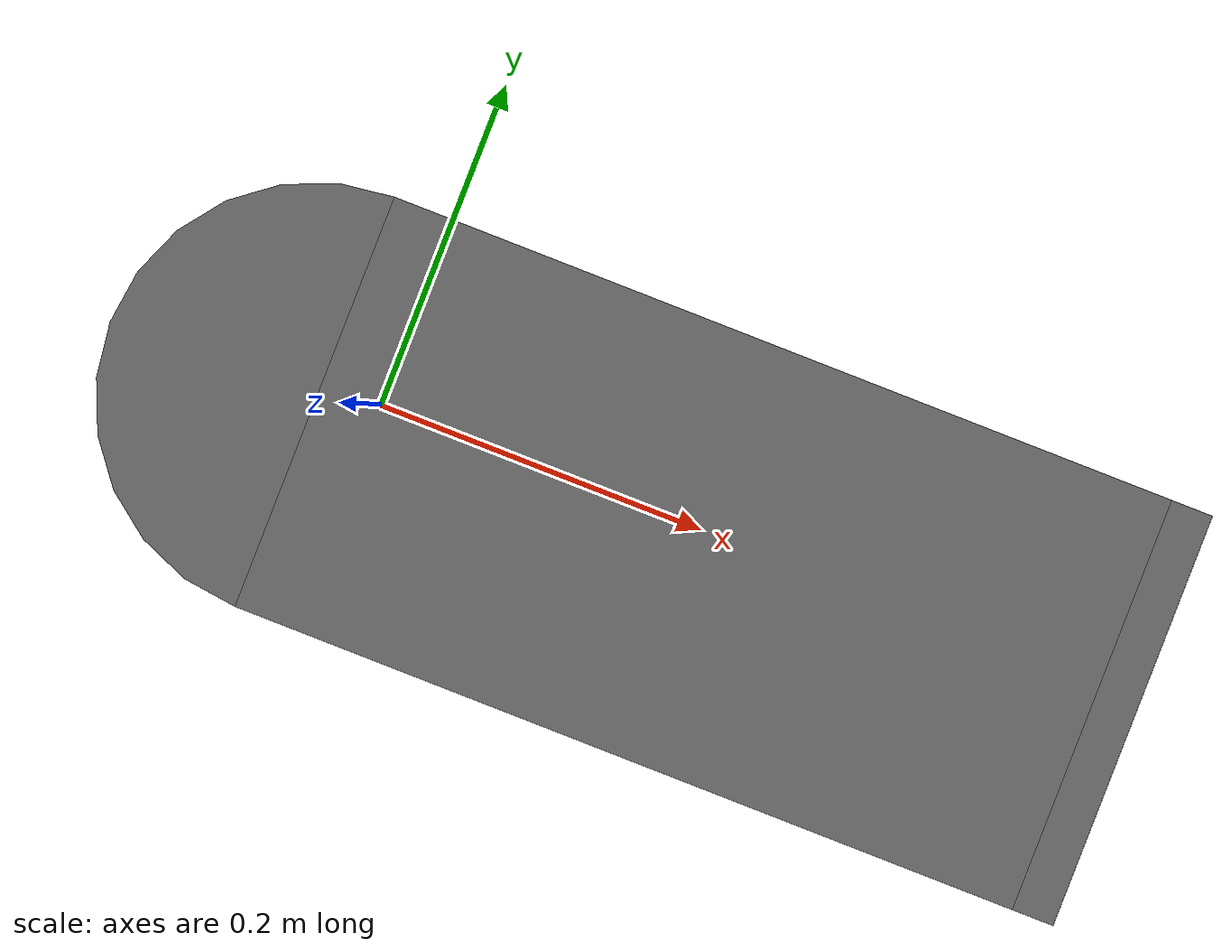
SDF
<?xml version='1.0'?>
<sdf version='1.4'>
  <model name="servo_connection_bracket">
    <static>true</static>

    <link name='bracket'>
      <gravity>0</gravity>
      <pose>0 0 0 0 0 0</pose>
      <inertial>
        <mass>0.1</mass>
      </inertial>

      <!-- Left arm part -->
      <collision name='left_arm_collision'>
        <!--
          0.27 =
          0.2 is 1/2 servo Z
        + 0.02 is 1/2 of bracket Z
        + 0.05 is 1/2 holder out of servo
        -->
        <pose>0.2 0 0.27 0 0 0</pose>
        <geometry>
          <box>
            <size>0.4 0.2 0.04</size>
          </box>
        </geometry>
      </collision>

      <visual name='left_arm_visual'>
        <pose>0.2 0 0.27 0 0 0</pose>
        <geometry>
          <box>
            <size>0.4 0.2 0.04</size>
          </box>
        </geometry>
        <material>
          <ambient>0 0 0 0.6</ambient>
        </material>
      </visual>

      <!-- Left arm mount circle -->
      <collision name='left_arm_mount_collision'>
        <pose>0 0 0.27 0 0 0</pose>
        <geometry>
          <cylinder>
            <radius>0.1</radius>
            <length>0.04</length>
          </cylinder>
        </geometry>
      </collision>

      <visual name='left_arm_mount_visual'>
        <pose>0 0 0.27 0 0 0</pose>
        <geometry>
          <cylinder>
            <radius>0.1</radius>
            <length>0.04</length>
          </cylinder>
        </geometry>
        <material>
          <ambient>0 0 0 0.6</ambient>
        </material>
      </visual>

      <!-- Right arm part -->
      <collision name='right_arm_collision'>
        <!--
          0.27 =
          0.2 is 1/2 servo Z
        + 0.02 is 1/2 of bracket Z
        + 0.05 is 1/2 holder out of servo
        -->
        <pose>0.2 0 -0.27 0 0 0</pose>
        <geometry>
          <box>
            <size>0.4 0.2 0.04</size>
          </box>
        </geometry>
      </collision>

      <visual name='right_arm_visual'>
        <pose>0.2 0 -0.27 0 0 0</pose>
        <geometry>
          <box>
            <size>0.4 0.2 0.04</size>
          </box>
        </geometry>
        <material>
          <ambient>0 0 0 0.6</ambient>
        </material>
      </visual>

      <!-- Right arm mount circle -->
      <collision name='right_arm_mount_collision'>
        <pose>0 0 -0.27 0 0 0</pose>
        <geometry>
          <cylinder>
            <radius>0.1</radius>
            <length>0.04</length>
          </cylinder>
        </geometry>
      </collision>

      <visual name='right_arm_mount_visual'>
        <pose>0 0 -0.27 0 0 0</pose>
        <geometry>
          <cylinder>
            <radius>0.1</radius>
            <length>0.04</length>
          </cylinder>
        </geometry>
        <material>
          <ambient>0 0 0 0.6</ambient>
        </material>
      </visual>

      <!-- Middle part -->
      <collision name='middle_bar_collision'>
        <!--
        0.38 =
        0.4 is arm size
        - 0.02 is 1/2 of middle bar Z size
        -->
        <pose>0.38 0 0 0 1.57 0</pose>
        <geometry>
          <box>
            <size>0.58 0.2 0.04</size>
          </box>
        </geometry>
      </collision>

      <visual name='middle_bar_visual'>
        <pose>0.38 0 0 0 1.57 0</pose>
        <geometry>
          <box>
            <!--
            0.58 =
            0.5 from servo holder height
            + 0.08 is 2 * 0.04 holder arms Z
            -->
            <size>0.58 0.2 0.04</size>
          </box>
        </geometry>
        <material>
          <ambient>0 0 0 0.6</ambient>
        </material>
      </visual>

    </link>
  </model>
</sdf>
